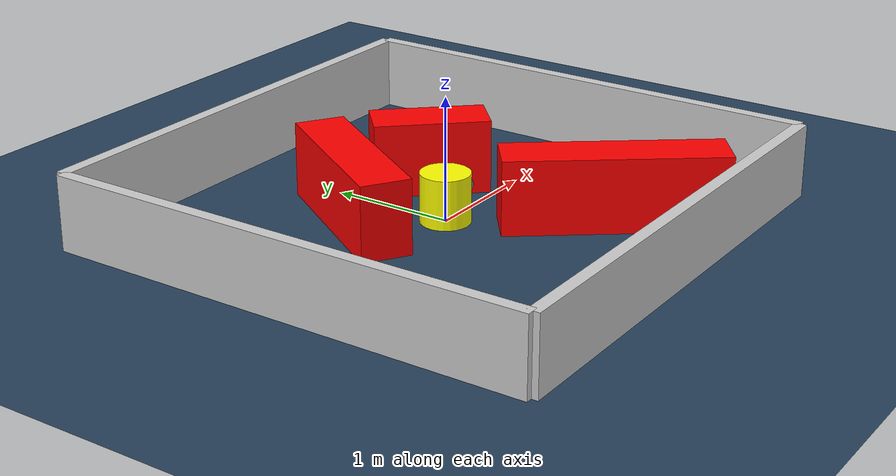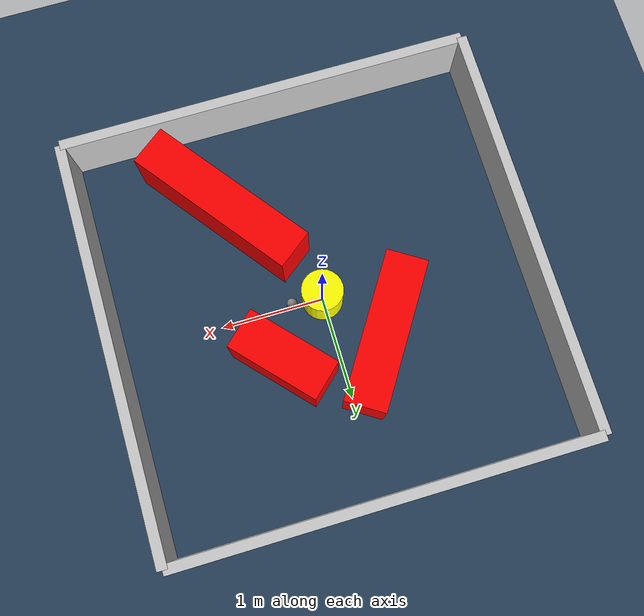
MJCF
<?xml version="1.0" ?>
<mujoco model="generated_environment">
  <option timestep="0.01" integrator="RK4" cone="elliptic"/>
  <default>
    <geom density="1"/>
  </default>
  <asset>
    <texture builtin="gradient" height="3072" rgb1="0.3 0.5 0.7" rgb2="0 0 0" type="skybox" width="512"/>
    <texture builtin="checker" height="300" mark="edge" markrgb="0.8 0.8 0.8" name="groundplane" rgb1="0.2 0.3 0.4" rgb2="0.1 0.2 0.3" type="2d" width="300"/>
    <material name="groundplane" reflectance="0.2" texrepeat="5 5" texture="groundplane" texuniform="true"/>
    <material name="robot" rgba="0.0 1.0 0.0 1"/>
  </asset>
  <worldbody>
    <light dir="0 0 -1" directional="true" pos="0 0 1.5"/>
    <geom condim="4" friction="1.0 0.005 0.001" material="groundplane" name="floor" size="0 0 0.05" type="plane"/>
    <body name="walls">
      <geom name="wall_1" condim="4" pos="-2.0 0.0 0.3" rgba="0.800000011920929 0.800000011920929 0.800000011920929 1.0" size="0.05 2.0 0.3" type="box"/>
      <geom name="wall_2" condim="4" pos="2.0 0.0 0.3" rgba="0.800000011920929 0.800000011920929 0.800000011920929 1.0" size="0.05 2.0 0.3" type="box"/>
      <geom name="wall_3" condim="4" pos="0.0 -2.0 0.3" rgba="0.800000011920929 0.800000011920929 0.800000011920929 1.0" size="2.0 0.05 0.3" type="box"/>
      <geom name="wall_4" condim="4" pos="0.0 2.0 0.3" rgba="0.800000011920929 0.800000011920929 0.800000011920929 1.0" size="2.0 0.05 0.3" type="box"/>
    </body>
    <body name="robot">
      <joint name="joint_x" type="slide" pos="0 0 0" axis="1 0 0"/>
      <joint name="joint_y" type="slide" pos="0 0 0" axis="0 1 0"/>
      <geom name="robot" type="sphere" pos="0.3 0.0 0.2" size="0.05" mass="5." friction="1.0 0.005 0.0001" condim="4" rgba="0.5 0.5 0.5 1.0"/>
      <site name="sensor_ball"/>
    </body>
    <body name="obstacle_movable_1">
      <geom name="obstacle_movable_1" condim="4" pos="0.0 0.0 0.2" euler="0 0 0.0" friction="1.0 0.005 0.001" rgba="1.0 1.0 0.0 1.0" size="0.2 0.2 0.0" type="cylinder" mass="0.1"/>
      <joint type="free"/>
    </body>
    <body name="obstacle_2_static">
      <geom name="obstacle_2_static" condim="4" pos="0.6725916678310413 -1.0830006791372535 0.3" euler="0 0 307.36443102849637" friction="1.0 0.005 0.001" rgba="1 0 0 1" size="0.8704075371407651 0.2 0.3" type="box"/>
    </body>
    <body name="obstacle_3_static">
      <geom name="obstacle_3_static" condim="4" pos="-0.4381452975898601 0.5586240459328533 0.3" euler="0 0 237.34865333282076" friction="1.0 0.005 0.001" rgba="1 0 0 1" size="0.7256175516986632 0.2 0.3" type="box"/>
    </body>
    <body name="obstacle_4_static">
      <geom name="obstacle_4_static" condim="4" pos="0.5195662857727861 0.5077358904822067 0.3" euler="0 0 132.5944421345199" friction="1.0 0.005 0.001" rgba="1 0 0 1" size="0.4638696378143181 0.2 0.3" type="box"/>
    </body>
  </worldbody>
  <actuator>
    <motor name="actuator_x" joint="joint_x" gear="1" ctrlrange="-1 1"/>
    <motor name="actuator_y" joint="joint_y" gear="1" ctrlrange="-1 1"/>
  </actuator>
</mujoco>
